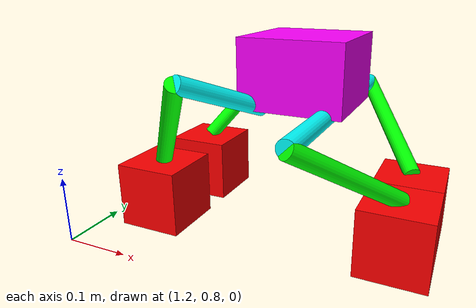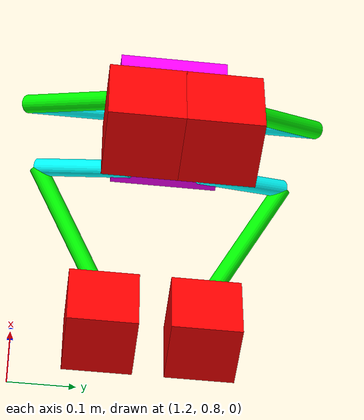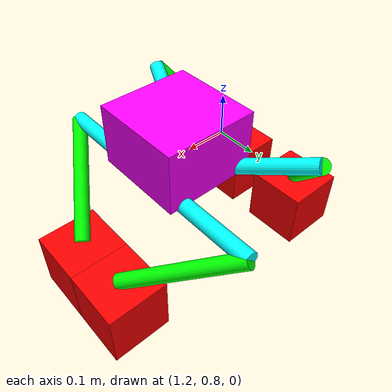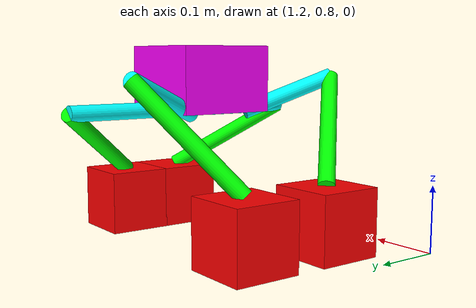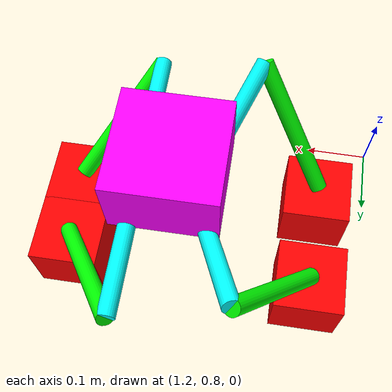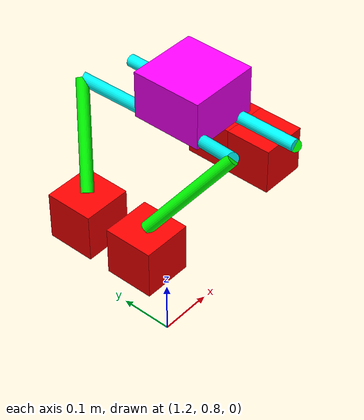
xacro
<?xml version="1.0"?>

<robot xmlns:xacro="http://www.ros.org/wiki/xacro" name="tripteron">

<!-- ******************** Kinematics ******************* -->
<xacro:include filename="util.xacro"/>
    <link name="world"/>

    <joint name="base_joint" type="fixed">
        <origin xyz="1.5 1.0 0.25" rpy="0 0 0"/>
        <parent link="world"/>
        <child link="base_link"/>
    </joint>

<!-- URDF relations to IRL are in meters-->
     <link name="base_link">
          <visual>
               <origin xyz="0 0 0" rpy="0 0 0"/>	<!-- Physical Center of robot Endeffector-->
               <geometry>
                    <box size="${pltf_l} ${pltf_w} ${pltf_h}" />
               </geometry>
               <material name="magenta"/>
          </visual>
     </link>

<!-- ******************** ARM ONE ******************* -->
     <!-- Base_link to Upper arm  -->
     <joint name="theta1" type="continuous">
          <parent link="base_link"/>
          <child  link="upperArm_one"/>
          <origin xyz="${O_x} -${O_y} -${O_z}" rpy="-${pi/2} -${pi/4} 0"/>
          <axis   xyz="1 0 0"/>
     </joint>

     <link name="upperArm_one">
          <visual>
               <origin xyz="0 0 -${toplimbLng/2}" rpy="0 0 0"/>
               <geometry>
                    <cylinder radius="${limbRad}" length="${toplimbLng}"/>
               </geometry>
               <material name="cyan"/>
          </visual>
     </link>

     <!-- Upper arm to Lower Arm -->
     <joint name="theta2" type="continuous">
          <parent link="upperArm_one"/>
          <child  link="lowerArm_one"/>
          <origin xyz="0 0 -${toplimbLng}" rpy="-${pi/4} 0 0"/>
          <axis   xyz="1 0 0"/>
     </joint>

     <link name="lowerArm_one">
          <visual>
               <origin xyz="0 0 ${bottomlimbLng/2}" rpy="0 0 0"/>
               <geometry>
                    <cylinder radius="${limbRad}" length="${bottomlimbLng}"/>
               </geometry>
               <material name="green"/>
          </visual>
     </link>

     <!-- Lower Arm to rail attachment -->
     <joint name="theta3" type="prismatic">
          <parent link="lowerArm_one"/>
          <child  link="railAttach_one"/>
          <origin xyz="0 0 ${bottomlimbLng}" rpy="-${pi/4} -${pi/4} -${pi/2}"/>
          <axis   xyz="0 0 1"/>
          <limit lower="${lLim_front}" upper="${uLim_front}" velocity="100" effort="100"/>
     </joint>
     <link name="railAttach_one">
          <visual>
               <origin xyz="0 -${slider_size/2} 0" rpy="0 0 0"/>
               <geometry>
                    <xacro:Cube size="${slider_size}"/>
               </geometry>
               <material name="red"/>
          </visual>
     </link>

<!-- ******************** ARM TWO ******************* -->
     <!-- Base_link to Upper arm  -->
     <joint name="theta4" type="continuous">
          <parent link="base_link"/>
          <child  link="upperArm_two"/>
          <origin xyz="${O_x} ${O_y} -${O_z}" rpy="-${pi/2} -${pi/4} 0"/>
          <axis   xyz="1 0 0"/>
     </joint>

     <link name="upperArm_two">
          <visual>
               <origin xyz="0 0 ${toplimbLng/2}" rpy="0 0 0"/>
               <geometry>
                    <cylinder radius="${limbRad}" length="${toplimbLng}"/>
               </geometry>
               <material name="cyan"/>
          </visual>
     </link>

     <!-- Upper arm to Lower Arm -->
     <joint name="theta5" type="continuous">
          <parent link="upperArm_two"/>
          <child  link="lowerArm_two"/>
          <origin xyz="0 0 ${toplimbLng}" rpy="-${3*pi/4} 0 0"/>
          <axis   xyz="1 0 0"/>
     </joint>
     <link name="lowerArm_two">
          <visual>
               <origin xyz="0 0 ${bottomlimbLng/2}" rpy="0 0 0"/>
               <geometry>
                    <cylinder radius="${limbRad}" length="${bottomlimbLng}"/>
               </geometry>
               <material name="green"/>
          </visual>
     </link>

     <!-- Lower Arm to rail attachment -->
     <joint name="theta6" type="prismatic">
          <parent link="lowerArm_two"/>
          <child  link="railAttach_two"/>
          <origin xyz="0 0 ${bottomlimbLng}" rpy="-${pi/4} ${pi/4} -${pi/2}"/>
          <axis   xyz="0 0 1"/>
          <limit lower="${lLim_front}" upper="${uLim_front}" velocity="100" effort="100"/>
     </joint>
     <link name="railAttach_two">
          <visual>
               <origin xyz="0 -${slider_size/2} 0" rpy="0 0 0"/>
               <geometry>
                    <xacro:Cube size="${slider_size}"/>
               </geometry>
               <material name="red"/>
          </visual>
     </link>

<!-- ******************** ARM THREE ******************* -->
     <!-- Base_link to Upper arm  -->
     <joint name="theta7" type="continuous">
          <parent link="base_link"/>
          <child  link="upperArm_three"/>
          <origin xyz="-${O_x} -${O_y} -${O_z}" rpy="${pi/3} ${pi/4} -${pi/4}"/>  <!-- Come back later to mess with the yaw  -${pi/4} -->
          <axis   xyz="1 0 0"/>
     </joint>

     <link name="upperArm_three">
          <visual>
               <origin xyz="0 0 ${toplimbLng/2}" rpy="0 0 0"/>
               <geometry>
                    <cylinder radius="${limbRad}" length="${toplimbLng}"/>
               </geometry>
               <material name="cyan"/>
          </visual>
     </link>

     <!-- Upper arm to Lower Arm -->
     <joint name="theta8" type="continuous">
          <parent link="upperArm_three"/>
          <child  link="lowerArm_three"/>
          <origin xyz="0 0 ${toplimbLng}" rpy="-${2*pi/3} 0 ${pi}"/>
          <axis   xyz="1 0 0"/>
     </joint>
     <link name="lowerArm_three">
          <visual>
               <origin xyz="0 0 ${bottomlimbLng/2}" rpy="0 0 0"/>
               <geometry>
                    <cylinder radius="${limbRad}" length="${bottomlimbLng}"/>
               </geometry>
               <material name="green"/>
          </visual>
     </link>

     <!-- Lower Arm to rail attachment -->
     <joint name="theta9" type="prismatic">
          <parent link="lowerArm_three"/>
          <child  link="railAttach_three"/>
          <origin xyz="0 0 ${bottomlimbLng}" rpy="-${pi/4} ${pi/4} 0"/>
          <axis   xyz="0 1 0"/>
          <limit lower="${lLim_back}" upper="${uLim_back}" velocity="100" effort="100"/>
     </joint>
     <link name="railAttach_three">
          <visual>
               <origin xyz="-${slider_size/2} 0 0" rpy="0 0 0"/>
               <geometry>
                    <xacro:Cube size="${slider_size}"/>
               </geometry>
               <material name="red"/>
          </visual>
     </link>

<!-- ******************** ARM FOUR ******************* -->
     <!-- Base_link to Upper arm  -->
     <joint name="theta10" type="continuous">
          <parent link="base_link"/>
          <child  link="upperArm_four"/>
          <origin xyz="-${O_x} ${O_y} -${O_z}" rpy="-${pi/3} ${pi/4} ${pi/4}"/>  <!-- Come back later to mess with the yaw  -0.7854 -->
          <axis   xyz="1 0 0"/>
     </joint>

     <link name="upperArm_four">
          <visual>
               <origin xyz="0 0 ${toplimbLng/2}" rpy="0 0 0"/>
               <geometry>
                    <cylinder radius="${limbRad}" length="${toplimbLng}"/>
               </geometry>
               <material name="cyan"/>
          </visual>
     </link>

    <!-- Upper arm to Lower Arm -->
     <joint name="theta11" type="continuous">
          <parent link="upperArm_four"/>
          <child  link="lowerArm_four"/>
          <origin xyz="0 0 ${toplimbLng}" rpy="${2*pi/3} 0 ${pi}"/>
          <axis   xyz="1 0 0"/>
     </joint>
     <link name="lowerArm_four">
          <visual>
               <origin xyz="0 0 ${bottomlimbLng/2}" rpy="0 0 0"/>
               <geometry>
                    <cylinder radius="${limbRad}" length="${bottomlimbLng}"/>
               </geometry>
               <material name="green"/>
          </visual>
     </link>

     <!-- Lower Arm to rail attachment -->
     <joint name="theta12" type="prismatic">
          <parent link="lowerArm_four"/>
          <child  link="railAttach_four"/>
          <origin xyz="0 0 ${bottomlimbLng}" rpy="-${pi/4} ${pi/4} 0"/>  <!-- rpy="${pi/3} ${3*pi/4} -${pi/2}"  |${pi/4} -${pi/2} 0-->
          <axis   xyz="0 0 1"/>
          <limit lower="${lLim_back}" upper="${uLim_back}" velocity="100" effort="100"/>
     </joint>
     <link name="railAttach_four">
          <visual>
               <origin xyz="-${slider_size/2} 0 0" rpy="0 0 0"/>
               <geometry>
                    <xacro:Cube size="${slider_size}"/>
               </geometry>
               <material name="red"/>
          </visual>
     </link>

 </robot>

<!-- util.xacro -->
<robot xmlns:xacro="http://www.ros.org/wiki/xacro" name="tripteron">
    <!-- Util class-->
    <!--                         numbers:                    -->
    <!-- 0.1524 = 6in    --> <!-- 0.1016 = 3in   -->
    <!-- 0.0254 = 1in    --> <!-- 0.0127 = 0.5in -->

    <xacro:property name="limbRad" value="0.0127" />
    <xacro:property name="toplimbLng" value="0.1524" />
    <xacro:property name="bottomlimbLng" value="0.2155" />
    <xacro:property name="pltf_l" value="0.1524" />
    <xacro:property name="pltf_w" value="0.1524" />
    <xacro:property name="pltf_h" value="0.1016" />
    <xacro:property name="slider_size" value="0.1016" />
    <xacro:property name="buffer" value="0.0135" />
    <xacro:property name="O_x" value="${(pltf_l/2) - (limbRad + buffer) }" />
    <xacro:property name="O_y" value="${(pltf_w/2) - (limbRad + buffer) }" />
    <xacro:property name="O_z" value="${pltf_h/2}" />

    <!-- Tempary upper and lower limits -->
    <xacro:property name="uLim_front" value="${bottomlimbLng+toplimbLng}"/>
    <xacro:property name="lLim_front" value="-${bottomlimbLng+toplimbLng}"/>
    <xacro:property name="uLim_back" value="${bottomlimbLng+toplimbLng}"/>
    <xacro:property name="lLim_back" value="-${bottomlimbLng+toplimbLng}"/>

    <xacro:macro name="Cube" params="size">
     <box size="${size} ${size} ${size}"/>
    </xacro:macro>
    <!-- *************** Materials / Colors **************** -->
    <material name="white">    <color rgba="1.00 1.00 1.00 1"/>  </material>
    <material name="gray">     <color rgba="0.60 0.60 0.60 1"/>  </material>
    <material name="table">    <color rgba="0.85 0.77 0.77 1"/>  </material>
    <material name="black">    <color rgba="0.00 0.00 0.00 1"/>  </material>

    <material name="red">      <color rgba="1.00 0.00 0.00 1"/>  </material>
    <material name="green">    <color rgba="0.00 1.00 0.00 1"/>  </material>
    <material name="blue">     <color rgba="0.00 0.00 1.00 1"/>  </material>

    <material name="cyan">     <color rgba="0.00 1.00 1.00 1"/>  </material>
    <material name="magenta">  <color rgba="1.00 0.00 1.00 1"/>  </material>
    <material name="yellow">   <color rgba="1.00 1.00 0.00 1"/>  </material>

    <material name="orange">   <color rgba="1.00 0.65 0.00 1"/>  </material>
</robot>
